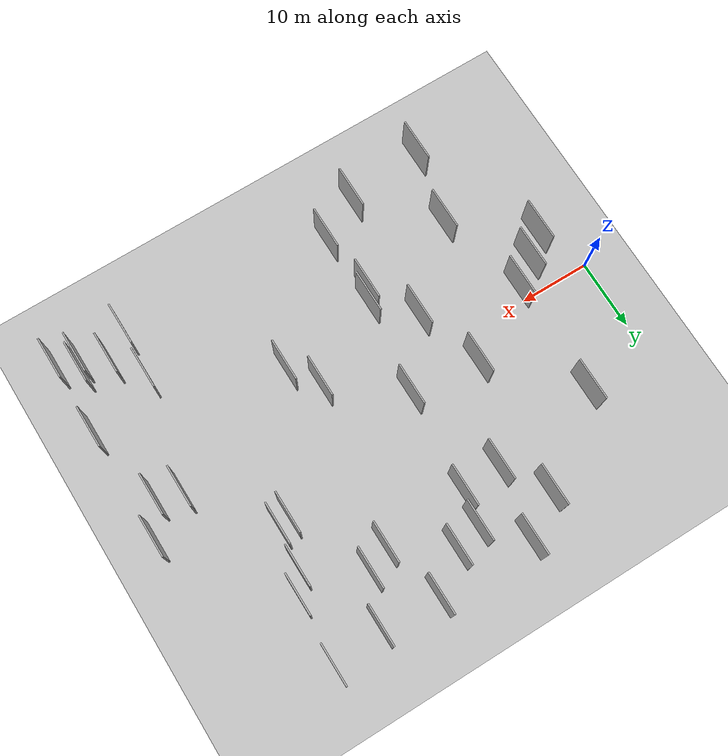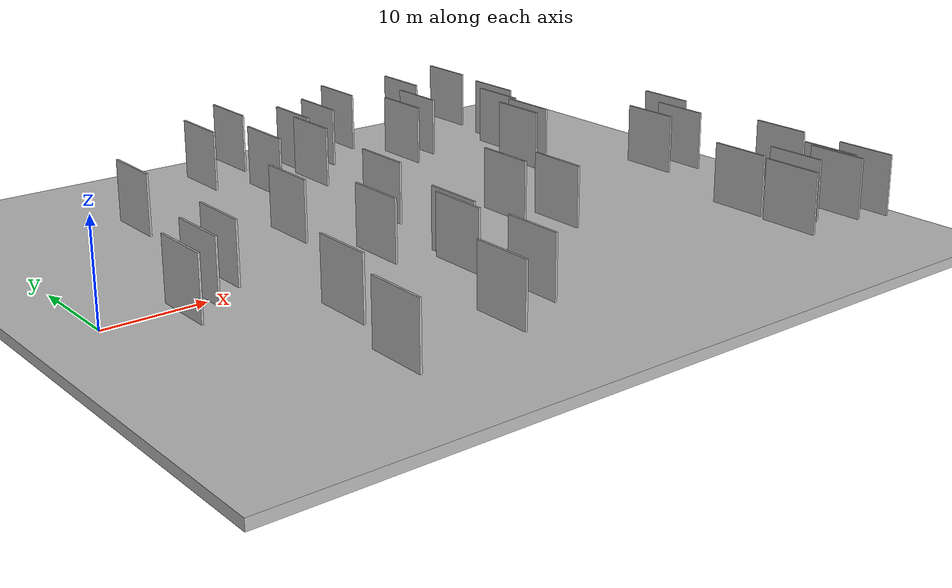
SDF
<?xml version="1.0" encoding="utf-8"?>

<sdf version="1.6">

   <world name="default">

      <gui fullscreen="0">

         <camera name="user_camera">

            <pose>-15 0 4.57585 0 0 0</pose>

            <view_controller>orbit</view_controller>

         </camera>

      </gui>

      <scene>

         <sky>

           <clouds>

             <speed>12</speed>

           </clouds>

         </sky>

         <ambient>0.4 0.4 0.4 1</ambient>

         <background>0.7 0.7 0.7 1</background>

         <shadows>1</shadows>

      </scene>

      <gravity>0 0 -9.8066</gravity>

      <magnetic_field>6e-06 2.3e-05 -4.2e-05</magnetic_field>

      <physics default="0" name="default_physics" type="ode">

         <ode>

            <solver>

               <type>quick</type>

               <iters>10</iters>

               <sor>1.0</sor>

               <use_dynamic_moi_rescaling>0</use_dynamic_moi_rescaling>

            </solver>

            <constraints>

               <cfm>0</cfm>

               <erp>0.2</erp>

               <contact_max_correcting_vel>100</contact_max_correcting_vel>

               <contact_surface_layer>0.001</contact_surface_layer>

            </constraints>

         </ode>

         <max_step_size>0.004</max_step_size>

         <real_time_factor>1</real_time_factor>

         <real_time_update_rate>250</real_time_update_rate>

      </physics>

      <light name="sun" type="directional">

         <cast_shadows>1</cast_shadows>

         <pose>0 0 10 0 0 0</pose>

         <diffuse>0.8 0.8 0.8 1</diffuse>

         <specular>0.2 0.2 0.2 1</specular>

         <attenuation>

            <range>1000</range>

            <constant>0.9</constant>

            <linear>0.01</linear>

            <quadratic>0.001</quadratic>

         </attenuation>

         <direction>-0.5 0.1 -0.9</direction>

      </light>

      <include>

         <name>ground_plane_1</name>

         <uri>model://HANNAS_ground_plane</uri>

         <pose>0 0 0  0 0 0</pose>

      </include>

      <include>

         <name>ground_plane_2</name>

         <uri>model://HANNAS_ground_plane</uri>

         <pose>100 0 0  0 0 0</pose>

      </include>

      <model name="HANNAS_wall_1">

         <static>1</static>

         <pose frame="">14.2026 -14.5574 2.5 0.000000 0.000000 1.570796</pose>

         <link name="link">

            <pose frame="">0 0 3.00 0 0 0</pose>

            <collision name="collision">

               <geometry>

                  <box>

                     <size>6.00 0.2 6.00</size>

                  </box>

               </geometry>

               <max_contacts>10</max_contacts>

               <surface>

                  <contact>

                     <ode/>

                  </contact>

                  <bounce/>

                  <friction>

                     <torsional>

                        <ode/>

                     </torsional>

                     <ode/>

                  </friction>

               </surface>

            </collision>

            <visual name="visual">

               <cast_shadows>0</cast_shadows>

               <geometry>

                  <box>

                     <size>6.00 0.2 6.00</size>

                  </box>

               </geometry>

               <material>

                  <script>

                     <uri>model://HANNAS_wall/materials/scripts</uri>

                     <uri>model://HANNAS_wall/materials/textures</uri>

                     <name>vrc/HANNAS_wall</name>

                  </script>

               </material>

            </visual>

            <self_collide>0</self_collide>

            <enable_wind>0</enable_wind>

            <kinematic>0</kinematic>

         </link>

      </model>

      <model name="HANNAS_wall_2">

         <static>1</static>

         <pose frame="">28.8171 -10.0424 2.5 0.000000 0.000000 1.570796</pose>

         <link name="link">

            <pose frame="">0 0 3.00 0 0 0</pose>

            <collision name="collision">

               <geometry>

                  <box>

                     <size>6.00 0.2 6.00</size>

                  </box>

               </geometry>

               <max_contacts>10</max_contacts>

               <surface>

                  <contact>

                     <ode/>

                  </contact>

                  <bounce/>

                  <friction>

                     <torsional>

                        <ode/>

                     </torsional>

                     <ode/>

                  </friction>

               </surface>

            </collision>

            <visual name="visual">

               <cast_shadows>0</cast_shadows>

               <geometry>

                  <box>

                     <size>6.00 0.2 6.00</size>

                  </box>

               </geometry>

               <material>

                  <script>

                     <uri>model://HANNAS_wall/materials/scripts</uri>

                     <uri>model://HANNAS_wall/materials/textures</uri>

                     <name>vrc/HANNAS_wall</name>

                  </script>

               </material>

            </visual>

            <self_collide>0</self_collide>

            <enable_wind>0</enable_wind>

            <kinematic>0</kinematic>

         </link>

      </model>

      <model name="HANNAS_wall_3">

         <static>1</static>

         <pose frame="">41.7081 27.2833 2.5 0.000000 0.000000 1.570796</pose>

         <link name="link">

            <pose frame="">0 0 3.00 0 0 0</pose>

            <collision name="collision">

               <geometry>

                  <box>

                     <size>6.00 0.2 6.00</size>

                  </box>

               </geometry>

               <max_contacts>10</max_contacts>

               <surface>

                  <contact>

                     <ode/>

                  </contact>

                  <bounce/>

                  <friction>

                     <torsional>

                        <ode/>

                     </torsional>

                     <ode/>

                  </friction>

               </surface>

            </collision>

            <visual name="visual">

               <cast_shadows>0</cast_shadows>

               <geometry>

                  <box>

                     <size>6.00 0.2 6.00</size>

                  </box>

               </geometry>

               <material>

                  <script>

                     <uri>model://HANNAS_wall/materials/scripts</uri>

                     <uri>model://HANNAS_wall/materials/textures</uri>

                     <name>vrc/HANNAS_wall</name>

                  </script>

               </material>

            </visual>

            <self_collide>0</self_collide>

            <enable_wind>0</enable_wind>

            <kinematic>0</kinematic>

         </link>

      </model>

      <model name="HANNAS_wall_4">

         <static>1</static>

         <pose frame="">20.9858 4.3722 2.5 0.000000 0.000000 1.570796</pose>

         <link name="link">

            <pose frame="">0 0 3.00 0 0 0</pose>

            <collision name="collision">

               <geometry>

                  <box>

                     <size>6.00 0.2 6.00</size>

                  </box>

               </geometry>

               <max_contacts>10</max_contacts>

               <surface>

                  <contact>

                     <ode/>

                  </contact>

                  <bounce/>

                  <friction>

                     <torsional>

                        <ode/>

                     </torsional>

                     <ode/>

                  </friction>

               </surface>

            </collision>

            <visual name="visual">

               <cast_shadows>0</cast_shadows>

               <geometry>

                  <box>

                     <size>6.00 0.2 6.00</size>

                  </box>

               </geometry>

               <material>

                  <script>

                     <uri>model://HANNAS_wall/materials/scripts</uri>

                     <uri>model://HANNAS_wall/materials/textures</uri>

                     <name>vrc/HANNAS_wall</name>

                  </script>

               </material>

            </visual>

            <self_collide>0</self_collide>

            <enable_wind>0</enable_wind>

            <kinematic>0</kinematic>

         </link>

      </model>

      <model name="HANNAS_wall_5">

         <static>1</static>

         <pose frame="">22.5727 23.4270 2.5 0.000000 0.000000 1.570796</pose>

         <link name="link">

            <pose frame="">0 0 3.00 0 0 0</pose>

            <collision name="collision">

               <geometry>

                  <box>

                     <size>6.00 0.2 6.00</size>

                  </box>

               </geometry>

               <max_contacts>10</max_contacts>

               <surface>

                  <contact>

                     <ode/>

                  </contact>

                  <bounce/>

                  <friction>

                     <torsional>

                        <ode/>

                     </torsional>

                     <ode/>

                  </friction>

               </surface>

            </collision>

            <visual name="visual">

               <cast_shadows>0</cast_shadows>

               <geometry>

                  <box>

                     <size>6.00 0.2 6.00</size>

                  </box>

               </geometry>

               <material>

                  <script>

                     <uri>model://HANNAS_wall/materials/scripts</uri>

                     <uri>model://HANNAS_wall/materials/textures</uri>

                     <name>vrc/HANNAS_wall</name>

                  </script>

               </material>

            </visual>

            <self_collide>0</self_collide>

            <enable_wind>0</enable_wind>

            <kinematic>0</kinematic>

         </link>

      </model>

      <model name="HANNAS_wall_6">

         <static>1</static>

         <pose frame="">10.6639 -1.4357 2.5 0.000000 0.000000 1.570796</pose>

         <link name="link">

            <pose frame="">0 0 3.00 0 0 0</pose>

            <collision name="collision">

               <geometry>

                  <box>

                     <size>6.00 0.2 6.00</size>

                  </box>

               </geometry>

               <max_contacts>10</max_contacts>

               <surface>

                  <contact>

                     <ode/>

                  </contact>

                  <bounce/>

                  <friction>

                     <torsional>

                        <ode/>

                     </torsional>

                     <ode/>

                  </friction>

               </surface>

            </collision>

            <visual name="visual">

               <cast_shadows>0</cast_shadows>

               <geometry>

                  <box>

                     <size>6.00 0.2 6.00</size>

                  </box>

               </geometry>

               <material>

                  <script>

                     <uri>model://HANNAS_wall/materials/scripts</uri>

                     <uri>model://HANNAS_wall/materials/textures</uri>

                     <name>vrc/HANNAS_wall</name>

                  </script>

               </material>

            </visual>

            <self_collide>0</self_collide>

            <enable_wind>0</enable_wind>

            <kinematic>0</kinematic>

         </link>

      </model>

      <model name="HANNAS_wall_7">

         <static>1</static>

         <pose frame="">56.5429 18.2465 2.5 0.000000 0.000000 1.570796</pose>

         <link name="link">

            <pose frame="">0 0 3.00 0 0 0</pose>

            <collision name="collision">

               <geometry>

                  <box>

                     <size>6.00 0.2 6.00</size>

                  </box>

               </geometry>

               <max_contacts>10</max_contacts>

               <surface>

                  <contact>

                     <ode/>

                  </contact>

                  <bounce/>

                  <friction>

                     <torsional>

                        <ode/>

                     </torsional>

                     <ode/>

                  </friction>

               </surface>

            </collision>

            <visual name="visual">

               <cast_shadows>0</cast_shadows>

               <geometry>

                  <box>

                     <size>6.00 0.2 6.00</size>

                  </box>

               </geometry>

               <material>

                  <script>

                     <uri>model://HANNAS_wall/materials/scripts</uri>

                     <uri>model://HANNAS_wall/materials/textures</uri>

                     <name>vrc/HANNAS_wall</name>

                  </script>

               </material>

            </visual>

            <self_collide>0</self_collide>

            <enable_wind>0</enable_wind>

            <kinematic>0</kinematic>

         </link>

      </model>

      <model name="HANNAS_wall_8">

         <static>1</static>

         <pose frame="">28.0515 -11.6703 2.5 0.000000 0.000000 1.570796</pose>

         <link name="link">

            <pose frame="">0 0 3.00 0 0 0</pose>

            <collision name="collision">

               <geometry>

                  <box>

                     <size>6.00 0.2 6.00</size>

                  </box>

               </geometry>

               <max_contacts>10</max_contacts>

               <surface>

                  <contact>

                     <ode/>

                  </contact>

                  <bounce/>

                  <friction>

                     <torsional>

                        <ode/>

                     </torsional>

                     <ode/>

                  </friction>

               </surface>

            </collision>

            <visual name="visual">

               <cast_shadows>0</cast_shadows>

               <geometry>

                  <box>

                     <size>6.00 0.2 6.00</size>

                  </box>

               </geometry>

               <material>

                  <script>

                     <uri>model://HANNAS_wall/materials/scripts</uri>

                     <uri>model://HANNAS_wall/materials/textures</uri>

                     <name>vrc/HANNAS_wall</name>

                  </script>

               </material>

            </visual>

            <self_collide>0</self_collide>

            <enable_wind>0</enable_wind>

            <kinematic>0</kinematic>

         </link>

      </model>

      <model name="HANNAS_wall_9">

         <static>1</static>

         <pose frame="">28.0957 27.2569 2.5 0.000000 0.000000 1.570796</pose>

         <link name="link">

            <pose frame="">0 0 3.00 0 0 0</pose>

            <collision name="collision">

               <geometry>

                  <box>

                     <size>6.00 0.2 6.00</size>

                  </box>

               </geometry>

               <max_contacts>10</max_contacts>

               <surface>

                  <contact>

                     <ode/>

                  </contact>

                  <bounce/>

                  <friction>

                     <torsional>

                        <ode/>

                     </torsional>

                     <ode/>

                  </friction>

               </surface>

            </collision>

            <visual name="visual">

               <cast_shadows>0</cast_shadows>

               <geometry>

                  <box>

                     <size>6.00 0.2 6.00</size>

                  </box>

               </geometry>

               <material>

                  <script>

                     <uri>model://HANNAS_wall/materials/scripts</uri>

                     <uri>model://HANNAS_wall/materials/textures</uri>

                     <name>vrc/HANNAS_wall</name>

                  </script>

               </material>

            </visual>

            <self_collide>0</self_collide>

            <enable_wind>0</enable_wind>

            <kinematic>0</kinematic>

         </link>

      </model>

      <model name="HANNAS_wall_10">

         <static>1</static>

         <pose frame="">32.0313 17.6643 2.5 0.000000 0.000000 1.570796</pose>

         <link name="link">

            <pose frame="">0 0 3.00 0 0 0</pose>

            <collision name="collision">

               <geometry>

                  <box>

                     <size>6.00 0.2 6.00</size>

                  </box>

               </geometry>

               <max_contacts>10</max_contacts>

               <surface>

                  <contact>

                     <ode/>

                  </contact>

                  <bounce/>

                  <friction>

                     <torsional>

                        <ode/>

                     </torsional>

                     <ode/>

                  </friction>

               </surface>

            </collision>

            <visual name="visual">

               <cast_shadows>0</cast_shadows>

               <geometry>

                  <box>

                     <size>6.00 0.2 6.00</size>

                  </box>

               </geometry>

               <material>

                  <script>

                     <uri>model://HANNAS_wall/materials/scripts</uri>

                     <uri>model://HANNAS_wall/materials/textures</uri>

                     <name>vrc/HANNAS_wall</name>

                  </script>

               </material>

            </visual>

            <self_collide>0</self_collide>

            <enable_wind>0</enable_wind>

            <kinematic>0</kinematic>

         </link>

      </model>

      <model name="HANNAS_wall_11">

         <static>1</static>

         <pose frame="">7.3054 -4.0457 2.5 0.000000 0.000000 1.570796</pose>

         <link name="link">

            <pose frame="">0 0 3.00 0 0 0</pose>

            <collision name="collision">

               <geometry>

                  <box>

                     <size>6.00 0.2 6.00</size>

                  </box>

               </geometry>

               <max_contacts>10</max_contacts>

               <surface>

                  <contact>

                     <ode/>

                  </contact>

                  <bounce/>

                  <friction>

                     <torsional>

                        <ode/>

                     </torsional>

                     <ode/>

                  </friction>

               </surface>

            </collision>

            <visual name="visual">

               <cast_shadows>0</cast_shadows>

               <geometry>

                  <box>

                     <size>6.00 0.2 6.00</size>

                  </box>

               </geometry>

               <material>

                  <script>

                     <uri>model://HANNAS_wall/materials/scripts</uri>

                     <uri>model://HANNAS_wall/materials/textures</uri>

                     <name>vrc/HANNAS_wall</name>

                  </script>

               </material>

            </visual>

            <self_collide>0</self_collide>

            <enable_wind>0</enable_wind>

            <kinematic>0</kinematic>

         </link>

      </model>

      <model name="HANNAS_wall_12">

         <static>1</static>

         <pose frame="">4.3363 -6.6348 2.5 0.000000 0.000000 1.570796</pose>

         <link name="link">

            <pose frame="">0 0 3.00 0 0 0</pose>

            <collision name="collision">

               <geometry>

                  <box>

                     <size>6.00 0.2 6.00</size>

                  </box>

               </geometry>

               <max_contacts>10</max_contacts>

               <surface>

                  <contact>

                     <ode/>

                  </contact>

                  <bounce/>

                  <friction>

                     <torsional>

                        <ode/>

                     </torsional>

                     <ode/>

                  </friction>

               </surface>

            </collision>

            <visual name="visual">

               <cast_shadows>0</cast_shadows>

               <geometry>

                  <box>

                     <size>6.00 0.2 6.00</size>

                  </box>

               </geometry>

               <material>

                  <script>

                     <uri>model://HANNAS_wall/materials/scripts</uri>

                     <uri>model://HANNAS_wall/materials/textures</uri>

                     <name>vrc/HANNAS_wall</name>

                  </script>

               </material>

            </visual>

            <self_collide>0</self_collide>

            <enable_wind>0</enable_wind>

            <kinematic>0</kinematic>

         </link>

      </model>

      <model name="HANNAS_wall_13">

         <static>1</static>

         <pose frame="">30.7363 3.3498 2.5 0.000000 0.000000 1.570796</pose>

         <link name="link">

            <pose frame="">0 0 3.00 0 0 0</pose>

            <collision name="collision">

               <geometry>

                  <box>

                     <size>6.00 0.2 6.00</size>

                  </box>

               </geometry>

               <max_contacts>10</max_contacts>

               <surface>

                  <contact>

                     <ode/>

                  </contact>

                  <bounce/>

                  <friction>

                     <torsional>

                        <ode/>

                     </torsional>

                     <ode/>

                  </friction>

               </surface>

            </collision>

            <visual name="visual">

               <cast_shadows>0</cast_shadows>

               <geometry>

                  <box>

                     <size>6.00 0.2 6.00</size>

                  </box>

               </geometry>

               <material>

                  <script>

                     <uri>model://HANNAS_wall/materials/scripts</uri>

                     <uri>model://HANNAS_wall/materials/textures</uri>

                     <name>vrc/HANNAS_wall</name>

                  </script>

               </material>

            </visual>

            <self_collide>0</self_collide>

            <enable_wind>0</enable_wind>

            <kinematic>0</kinematic>

         </link>

      </model>

      <model name="HANNAS_wall_14">

         <static>1</static>

         <pose frame="">62.1894 -0.7530 2.5 0.000000 0.000000 1.570796</pose>

         <link name="link">

            <pose frame="">0 0 3.00 0 0 0</pose>

            <collision name="collision">

               <geometry>

                  <box>

                     <size>6.00 0.2 6.00</size>

                  </box>

               </geometry>

               <max_contacts>10</max_contacts>

               <surface>

                  <contact>

                     <ode/>

                  </contact>

                  <bounce/>

                  <friction>

                     <torsional>

                        <ode/>

                     </torsional>

                     <ode/>

                  </friction>

               </surface>

            </collision>

            <visual name="visual">

               <cast_shadows>0</cast_shadows>

               <geometry>

                  <box>

                     <size>6.00 0.2 6.00</size>

                  </box>

               </geometry>

               <material>

                  <script>

                     <uri>model://HANNAS_wall/materials/scripts</uri>

                     <uri>model://HANNAS_wall/materials/textures</uri>

                     <name>vrc/HANNAS_wall</name>

                  </script>

               </material>

            </visual>

            <self_collide>0</self_collide>

            <enable_wind>0</enable_wind>

            <kinematic>0</kinematic>

         </link>

      </model>

      <model name="HANNAS_wall_15">

         <static>1</static>

         <pose frame="">54.1920 9.5668 2.5 0.000000 0.000000 1.570796</pose>

         <link name="link">

            <pose frame="">0 0 3.00 0 0 0</pose>

            <collision name="collision">

               <geometry>

                  <box>

                     <size>6.00 0.2 6.00</size>

                  </box>

               </geometry>

               <max_contacts>10</max_contacts>

               <surface>

                  <contact>

                     <ode/>

                  </contact>

                  <bounce/>

                  <friction>

                     <torsional>

                        <ode/>

                     </torsional>

                     <ode/>

                  </friction>

               </surface>

            </collision>

            <visual name="visual">

               <cast_shadows>0</cast_shadows>

               <geometry>

                  <box>

                     <size>6.00 0.2 6.00</size>

                  </box>

               </geometry>

               <material>

                  <script>

                     <uri>model://HANNAS_wall/materials/scripts</uri>

                     <uri>model://HANNAS_wall/materials/textures</uri>

                     <name>vrc/HANNAS_wall</name>

                  </script>

               </material>

            </visual>

            <self_collide>0</self_collide>

            <enable_wind>0</enable_wind>

            <kinematic>0</kinematic>

         </link>

      </model>

      <model name="HANNAS_wall_16">

         <static>1</static>

         <pose frame="">57.1819 27.5732 2.5 0.000000 0.000000 1.570796</pose>

         <link name="link">

            <pose frame="">0 0 3.00 0 0 0</pose>

            <collision name="collision">

               <geometry>

                  <box>

                     <size>6.00 0.2 6.00</size>

                  </box>

               </geometry>

               <max_contacts>10</max_contacts>

               <surface>

                  <contact>

                     <ode/>

                  </contact>

                  <bounce/>

                  <friction>

                     <torsional>

                        <ode/>

                     </torsional>

                     <ode/>

                  </friction>

               </surface>

            </collision>

            <visual name="visual">

               <cast_shadows>0</cast_shadows>

               <geometry>

                  <box>

                     <size>6.00 0.2 6.00</size>

                  </box>

               </geometry>

               <material>

                  <script>

                     <uri>model://HANNAS_wall/materials/scripts</uri>

                     <uri>model://HANNAS_wall/materials/textures</uri>

                     <name>vrc/HANNAS_wall</name>

                  </script>

               </material>

            </visual>

            <self_collide>0</self_collide>

            <enable_wind>0</enable_wind>

            <kinematic>0</kinematic>

         </link>

      </model>

      <model name="HANNAS_wall_17">

         <static>1</static>

         <pose frame="">58.5839 -16.3886 2.5 0.000000 0.000000 1.570796</pose>

         <link name="link">

            <pose frame="">0 0 3.00 0 0 0</pose>

            <collision name="collision">

               <geometry>

                  <box>

                     <size>6.00 0.2 6.00</size>

                  </box>

               </geometry>

               <max_contacts>10</max_contacts>

               <surface>

                  <contact>

                     <ode/>

                  </contact>

                  <bounce/>

                  <friction>

                     <torsional>

                        <ode/>

                     </torsional>

                     <ode/>

                  </friction>

               </surface>

            </collision>

            <visual name="visual">

               <cast_shadows>0</cast_shadows>

               <geometry>

                  <box>

                     <size>6.00 0.2 6.00</size>

                  </box>

               </geometry>

               <material>

                  <script>

                     <uri>model://HANNAS_wall/materials/scripts</uri>

                     <uri>model://HANNAS_wall/materials/textures</uri>

                     <name>vrc/HANNAS_wall</name>

                  </script>

               </material>

            </visual>

            <self_collide>0</self_collide>

            <enable_wind>0</enable_wind>

            <kinematic>0</kinematic>

         </link>

      </model>

      <model name="HANNAS_wall_18">

         <static>1</static>

         <pose frame="">61.6391 -20.5775 2.5 0.000000 0.000000 1.570796</pose>

         <link name="link">

            <pose frame="">0 0 3.00 0 0 0</pose>

            <collision name="collision">

               <geometry>

                  <box>

                     <size>6.00 0.2 6.00</size>

                  </box>

               </geometry>

               <max_contacts>10</max_contacts>

               <surface>

                  <contact>

                     <ode/>

                  </contact>

                  <bounce/>

                  <friction>

                     <torsional>

                        <ode/>

                     </torsional>

                     <ode/>

                  </friction>

               </surface>

            </collision>

            <visual name="visual">

               <cast_shadows>0</cast_shadows>

               <geometry>

                  <box>

                     <size>6.00 0.2 6.00</size>

                  </box>

               </geometry>

               <material>

                  <script>

                     <uri>model://HANNAS_wall/materials/scripts</uri>

                     <uri>model://HANNAS_wall/materials/textures</uri>

                     <name>vrc/HANNAS_wall</name>

                  </script>

               </material>

            </visual>

            <self_collide>0</self_collide>

            <enable_wind>0</enable_wind>

            <kinematic>0</kinematic>

         </link>

      </model>

      <model name="HANNAS_wall_19">

         <static>1</static>

         <pose frame="">28.9326 -20.4103 2.5 0.000000 0.000000 1.570796</pose>

         <link name="link">

            <pose frame="">0 0 3.00 0 0 0</pose>

            <collision name="collision">

               <geometry>

                  <box>

                     <size>6.00 0.2 6.00</size>

                  </box>

               </geometry>

               <max_contacts>10</max_contacts>

               <surface>

                  <contact>

                     <ode/>

                  </contact>

                  <bounce/>

                  <friction>

                     <torsional>

                        <ode/>

                     </torsional>

                     <ode/>

                  </friction>

               </surface>

            </collision>

            <visual name="visual">

               <cast_shadows>0</cast_shadows>

               <geometry>

                  <box>

                     <size>6.00 0.2 6.00</size>

                  </box>

               </geometry>

               <material>

                  <script>

                     <uri>model://HANNAS_wall/materials/scripts</uri>

                     <uri>model://HANNAS_wall/materials/textures</uri>

                     <name>vrc/HANNAS_wall</name>

                  </script>

               </material>

            </visual>

            <self_collide>0</self_collide>

            <enable_wind>0</enable_wind>

            <kinematic>0</kinematic>

         </link>

      </model>

      <model name="HANNAS_wall_20">

         <static>1</static>

         <pose frame="">68.0917 -23.6940 2.5 0.000000 0.000000 1.570796</pose>

         <link name="link">

            <pose frame="">0 0 3.00 0 0 0</pose>

            <collision name="collision">

               <geometry>

                  <box>

                     <size>6.00 0.2 6.00</size>

                  </box>

               </geometry>

               <max_contacts>10</max_contacts>

               <surface>

                  <contact>

                     <ode/>

                  </contact>

                  <bounce/>

                  <friction>

                     <torsional>

                        <ode/>

                     </torsional>

                     <ode/>

                  </friction>

               </surface>

            </collision>

            <visual name="visual">

               <cast_shadows>0</cast_shadows>

               <geometry>

                  <box>

                     <size>6.00 0.2 6.00</size>

                  </box>

               </geometry>

               <material>

                  <script>

                     <uri>model://HANNAS_wall/materials/scripts</uri>

                     <uri>model://HANNAS_wall/materials/textures</uri>

                     <name>vrc/HANNAS_wall</name>

                  </script>

               </material>

            </visual>

            <self_collide>0</self_collide>

            <enable_wind>0</enable_wind>

            <kinematic>0</kinematic>

         </link>

      </model>

      <model name="HANNAS_wall_21">

         <static>1</static>

         <pose frame="">54.7699 15.2630 2.5 0.000000 0.000000 1.570796</pose>

         <link name="link">

            <pose frame="">0 0 3.00 0 0 0</pose>

            <collision name="collision">

               <geometry>

                  <box>

                     <size>6.00 0.2 6.00</size>

                  </box>

               </geometry>

               <max_contacts>10</max_contacts>

               <surface>

                  <contact>

                     <ode/>

                  </contact>

                  <bounce/>

                  <friction>

                     <torsional>

                        <ode/>

                     </torsional>

                     <ode/>

                  </friction>

               </surface>

            </collision>

            <visual name="visual">

               <cast_shadows>0</cast_shadows>

               <geometry>

                  <box>

                     <size>6.00 0.2 6.00</size>

                  </box>

               </geometry>

               <material>

                  <script>

                     <uri>model://HANNAS_wall/materials/scripts</uri>

                     <uri>model://HANNAS_wall/materials/textures</uri>

                     <name>vrc/HANNAS_wall</name>

                  </script>

               </material>

            </visual>

            <self_collide>0</self_collide>

            <enable_wind>0</enable_wind>

            <kinematic>0</kinematic>

         </link>

      </model>

      <model name="HANNAS_wall_22">

         <static>1</static>

         <pose frame="">24.1103 -5.1033 2.5 0.000000 0.000000 1.570796</pose>

         <link name="link">

            <pose frame="">0 0 3.00 0 0 0</pose>

            <collision name="collision">

               <geometry>

                  <box>

                     <size>6.00 0.2 6.00</size>

                  </box>

               </geometry>

               <max_contacts>10</max_contacts>

               <surface>

                  <contact>

                     <ode/>

                  </contact>

                  <bounce/>

                  <friction>

                     <torsional>

                        <ode/>

                     </torsional>

                     <ode/>

                  </friction>

               </surface>

            </collision>

            <visual name="visual">

               <cast_shadows>0</cast_shadows>

               <geometry>

                  <box>

                     <size>6.00 0.2 6.00</size>

                  </box>

               </geometry>

               <material>

                  <script>

                     <uri>model://HANNAS_wall/materials/scripts</uri>

                     <uri>model://HANNAS_wall/materials/textures</uri>

                     <name>vrc/HANNAS_wall</name>

                  </script>

               </material>

            </visual>

            <self_collide>0</self_collide>

            <enable_wind>0</enable_wind>

            <kinematic>0</kinematic>

         </link>

      </model>

      <model name="HANNAS_wall_23">

         <static>1</static>

         <pose frame="">40.0230 -3.6416 2.5 0.000000 0.000000 1.570796</pose>

         <link name="link">

            <pose frame="">0 0 3.00 0 0 0</pose>

            <collision name="collision">

               <geometry>

                  <box>

                     <size>6.00 0.2 6.00</size>

                  </box>

               </geometry>

               <max_contacts>10</max_contacts>

               <surface>

                  <contact>

                     <ode/>

                  </contact>

                  <bounce/>

                  <friction>

                     <torsional>

                        <ode/>

                     </torsional>

                     <ode/>

                  </friction>

               </surface>

            </collision>

            <visual name="visual">

               <cast_shadows>0</cast_shadows>

               <geometry>

                  <box>

                     <size>6.00 0.2 6.00</size>

                  </box>

               </geometry>

               <material>

                  <script>

                     <uri>model://HANNAS_wall/materials/scripts</uri>

                     <uri>model://HANNAS_wall/materials/textures</uri>

                     <name>vrc/HANNAS_wall</name>

                  </script>

               </material>

            </visual>

            <self_collide>0</self_collide>

            <enable_wind>0</enable_wind>

            <kinematic>0</kinematic>

         </link>

      </model>

      <model name="HANNAS_wall_24">

         <static>1</static>

         <pose frame="">10.9009 14.8234 2.5 0.000000 0.000000 1.570796</pose>

         <link name="link">

            <pose frame="">0 0 3.00 0 0 0</pose>

            <collision name="collision">

               <geometry>

                  <box>

                     <size>6.00 0.2 6.00</size>

                  </box>

               </geometry>

               <max_contacts>10</max_contacts>

               <surface>

                  <contact>

                     <ode/>

                  </contact>

                  <bounce/>

                  <friction>

                     <torsional>

                        <ode/>

                     </torsional>

                     <ode/>

                  </friction>

               </surface>

            </collision>

            <visual name="visual">

               <cast_shadows>0</cast_shadows>

               <geometry>

                  <box>

                     <size>6.00 0.2 6.00</size>

                  </box>

               </geometry>

               <material>

                  <script>

                     <uri>model://HANNAS_wall/materials/scripts</uri>

                     <uri>model://HANNAS_wall/materials/textures</uri>

                     <name>vrc/HANNAS_wall</name>

                  </script>

               </material>

            </visual>

            <self_collide>0</self_collide>

            <enable_wind>0</enable_wind>

            <kinematic>0</kinematic>

         </link>

      </model>

      <model name="HANNAS_wall_25">

         <static>1</static>

         <pose frame="">47.3428 20.1316 2.5 0.000000 0.000000 1.570796</pose>

         <link name="link">

            <pose frame="">0 0 3.00 0 0 0</pose>

            <collision name="collision">

               <geometry>

                  <box>

                     <size>6.00 0.2 6.00</size>

                  </box>

               </geometry>

               <max_contacts>10</max_contacts>

               <surface>

                  <contact>

                     <ode/>

                  </contact>

                  <bounce/>

                  <friction>

                     <torsional>

                        <ode/>

                     </torsional>

                     <ode/>

                  </friction>

               </surface>

            </collision>

            <visual name="visual">

               <cast_shadows>0</cast_shadows>

               <geometry>

                  <box>

                     <size>6.00 0.2 6.00</size>

                  </box>

               </geometry>

               <material>

                  <script>

                     <uri>model://HANNAS_wall/materials/scripts</uri>

                     <uri>model://HANNAS_wall/materials/textures</uri>

                     <name>vrc/HANNAS_wall</name>

                  </script>

               </material>

            </visual>

            <self_collide>0</self_collide>

            <enable_wind>0</enable_wind>

            <kinematic>0</kinematic>

         </link>

      </model>

      <model name="HANNAS_wall_26">

         <static>1</static>

         <pose frame="">65.6092 -1.6894 2.5 0.000000 0.000000 1.570796</pose>

         <link name="link">

            <pose frame="">0 0 3.00 0 0 0</pose>

            <collision name="collision">

               <geometry>

                  <box>

                     <size>6.00 0.2 6.00</size>

                  </box>

               </geometry>

               <max_contacts>10</max_contacts>

               <surface>

                  <contact>

                     <ode/>

                  </contact>

                  <bounce/>

                  <friction>

                     <torsional>

                        <ode/>

                     </torsional>

                     <ode/>

                  </friction>

               </surface>

            </collision>

            <visual name="visual">

               <cast_shadows>0</cast_shadows>

               <geometry>

                  <box>

                     <size>6.00 0.2 6.00</size>

                  </box>

               </geometry>

               <material>

                  <script>

                     <uri>model://HANNAS_wall/materials/scripts</uri>

                     <uri>model://HANNAS_wall/materials/textures</uri>

                     <name>vrc/HANNAS_wall</name>

                  </script>

               </material>

            </visual>

            <self_collide>0</self_collide>

            <enable_wind>0</enable_wind>

            <kinematic>0</kinematic>

         </link>

      </model>

      <model name="HANNAS_wall_27">

         <static>1</static>

         <pose frame="">58.2008 -22.9971 2.5 0.000000 0.000000 1.570796</pose>

         <link name="link">

            <pose frame="">0 0 3.00 0 0 0</pose>

            <collision name="collision">

               <geometry>

                  <box>

                     <size>6.00 0.2 6.00</size>

                  </box>

               </geometry>

               <max_contacts>10</max_contacts>

               <surface>

                  <contact>

                     <ode/>

                  </contact>

                  <bounce/>

                  <friction>

                     <torsional>

                        <ode/>

                     </torsional>

                     <ode/>

                  </friction>

               </surface>

            </collision>

            <visual name="visual">

               <cast_shadows>0</cast_shadows>

               <geometry>

                  <box>

                     <size>6.00 0.2 6.00</size>

                  </box>

               </geometry>

               <material>

                  <script>

                     <uri>model://HANNAS_wall/materials/scripts</uri>

                     <uri>model://HANNAS_wall/materials/textures</uri>

                     <name>vrc/HANNAS_wall</name>

                  </script>

               </material>

            </visual>

            <self_collide>0</self_collide>

            <enable_wind>0</enable_wind>

            <kinematic>0</kinematic>

         </link>

      </model>

      <model name="HANNAS_wall_28">

         <static>1</static>

         <pose frame="">23.0753 -23.5647 2.5 0.000000 0.000000 1.570796</pose>

         <link name="link">

            <pose frame="">0 0 3.00 0 0 0</pose>

            <collision name="collision">

               <geometry>

                  <box>

                     <size>6.00 0.2 6.00</size>

                  </box>

               </geometry>

               <max_contacts>10</max_contacts>

               <surface>

                  <contact>

                     <ode/>

                  </contact>

                  <bounce/>

                  <friction>

                     <torsional>

                        <ode/>

                     </torsional>

                     <ode/>

                  </friction>

               </surface>

            </collision>

            <visual name="visual">

               <cast_shadows>0</cast_shadows>

               <geometry>

                  <box>

                     <size>6.00 0.2 6.00</size>

                  </box>

               </geometry>

               <material>

                  <script>

                     <uri>model://HANNAS_wall/materials/scripts</uri>

                     <uri>model://HANNAS_wall/materials/textures</uri>

                     <name>vrc/HANNAS_wall</name>

                  </script>

               </material>

            </visual>

            <self_collide>0</self_collide>

            <enable_wind>0</enable_wind>

            <kinematic>0</kinematic>

         </link>

      </model>

      <model name="HANNAS_wall_29">

         <static>1</static>

         <pose frame="">26.3940 17.3170 2.5 0.000000 0.000000 1.570796</pose>

         <link name="link">

            <pose frame="">0 0 3.00 0 0 0</pose>

            <collision name="collision">

               <geometry>

                  <box>

                     <size>6.00 0.2 6.00</size>

                  </box>

               </geometry>

               <max_contacts>10</max_contacts>

               <surface>

                  <contact>

                     <ode/>

                  </contact>

                  <bounce/>

                  <friction>

                     <torsional>

                        <ode/>

                     </torsional>

                     <ode/>

                  </friction>

               </surface>

            </collision>

            <visual name="visual">

               <cast_shadows>0</cast_shadows>

               <geometry>

                  <box>

                     <size>6.00 0.2 6.00</size>

                  </box>

               </geometry>

               <material>

                  <script>

                     <uri>model://HANNAS_wall/materials/scripts</uri>

                     <uri>model://HANNAS_wall/materials/textures</uri>

                     <name>vrc/HANNAS_wall</name>

                  </script>

               </material>

            </visual>

            <self_collide>0</self_collide>

            <enable_wind>0</enable_wind>

            <kinematic>0</kinematic>

         </link>

      </model>

      <model name="HANNAS_wall_30">

         <static>1</static>

         <pose frame="">49.9162 26.6283 2.5 0.000000 0.000000 1.570796</pose>

         <link name="link">

            <pose frame="">0 0 3.00 0 0 0</pose>

            <collision name="collision">

               <geometry>

                  <box>

                     <size>6.00 0.2 6.00</size>

                  </box>

               </geometry>

               <max_contacts>10</max_contacts>

               <surface>

                  <contact>

                     <ode/>

                  </contact>

                  <bounce/>

                  <friction>

                     <torsional>

                        <ode/>

                     </torsional>

                     <ode/>

                  </friction>

               </surface>

            </collision>

            <visual name="visual">

               <cast_shadows>0</cast_shadows>

               <geometry>

                  <box>

                     <size>6.00 0.2 6.00</size>

                  </box>

               </geometry>

               <material>

                  <script>

                     <uri>model://HANNAS_wall/materials/scripts</uri>

                     <uri>model://HANNAS_wall/materials/textures</uri>

                     <name>vrc/HANNAS_wall</name>

                  </script>

               </material>

            </visual>

            <self_collide>0</self_collide>

            <enable_wind>0</enable_wind>

            <kinematic>0</kinematic>

         </link>

      </model>

      <model name="HANNAS_wall_31">

         <static>1</static>

         <pose frame="">65.0193 -22.7398 2.5 0.000000 0.000000 1.570796</pose>

         <link name="link">

            <pose frame="">0 0 3.00 0 0 0</pose>

            <collision name="collision">

               <geometry>

                  <box>

                     <size>6.00 0.2 6.00</size>

                  </box>

               </geometry>

               <max_contacts>10</max_contacts>

               <surface>

                  <contact>

                     <ode/>

                  </contact>

                  <bounce/>

                  <friction>

                     <torsional>

                        <ode/>

                     </torsional>

                     <ode/>

                  </friction>

               </surface>

            </collision>

            <visual name="visual">

               <cast_shadows>0</cast_shadows>

               <geometry>

                  <box>

                     <size>6.00 0.2 6.00</size>

                  </box>

               </geometry>

               <material>

                  <script>

                     <uri>model://HANNAS_wall/materials/scripts</uri>

                     <uri>model://HANNAS_wall/materials/textures</uri>

                     <name>vrc/HANNAS_wall</name>

                  </script>

               </material>

            </visual>

            <self_collide>0</self_collide>

            <enable_wind>0</enable_wind>

            <kinematic>0</kinematic>

         </link>

      </model>

      <model name="HANNAS_wall_32">

         <static>1</static>

         <pose frame="">12.0579 -24.7450 2.5 0.000000 0.000000 1.570796</pose>

         <link name="link">

            <pose frame="">0 0 3.00 0 0 0</pose>

            <collision name="collision">

               <geometry>

                  <box>

                     <size>6.00 0.2 6.00</size>

                  </box>

               </geometry>

               <max_contacts>10</max_contacts>

               <surface>

                  <contact>

                     <ode/>

                  </contact>

                  <bounce/>

                  <friction>

                     <torsional>

                        <ode/>

                     </torsional>

                     <ode/>

                  </friction>

               </surface>

            </collision>

            <visual name="visual">

               <cast_shadows>0</cast_shadows>

               <geometry>

                  <box>

                     <size>6.00 0.2 6.00</size>

                  </box>

               </geometry>

               <material>

                  <script>

                     <uri>model://HANNAS_wall/materials/scripts</uri>

                     <uri>model://HANNAS_wall/materials/textures</uri>

                     <name>vrc/HANNAS_wall</name>

                  </script>

               </material>

            </visual>

            <self_collide>0</self_collide>

            <enable_wind>0</enable_wind>

            <kinematic>0</kinematic>

         </link>

      </model>

      <model name="HANNAS_wall_33">

         <static>1</static>

         <pose frame="">44.0949 18.4941 2.5 0.000000 0.000000 1.570796</pose>

         <link name="link">

            <pose frame="">0 0 3.00 0 0 0</pose>

            <collision name="collision">

               <geometry>

                  <box>

                     <size>6.00 0.2 6.00</size>

                  </box>

               </geometry>

               <max_contacts>10</max_contacts>

               <surface>

                  <contact>

                     <ode/>

                  </contact>

                  <bounce/>

                  <friction>

                     <torsional>

                        <ode/>

                     </torsional>

                     <ode/>

                  </friction>

               </surface>

            </collision>

            <visual name="visual">

               <cast_shadows>0</cast_shadows>

               <geometry>

                  <box>

                     <size>6.00 0.2 6.00</size>

                  </box>

               </geometry>

               <material>

                  <script>

                     <uri>model://HANNAS_wall/materials/scripts</uri>

                     <uri>model://HANNAS_wall/materials/textures</uri>

                     <name>vrc/HANNAS_wall</name>

                  </script>

               </material>

            </visual>

            <self_collide>0</self_collide>

            <enable_wind>0</enable_wind>

            <kinematic>0</kinematic>

         </link>

      </model>

      <model name="HANNAS_wall_34">

         <static>1</static>

         <pose frame="">42.8234 -7.8627 2.5 0.000000 0.000000 1.570796</pose>

         <link name="link">

            <pose frame="">0 0 3.00 0 0 0</pose>

            <collision name="collision">

               <geometry>

                  <box>

                     <size>6.00 0.2 6.00</size>

                  </box>

               </geometry>

               <max_contacts>10</max_contacts>

               <surface>

                  <contact>

                     <ode/>

                  </contact>

                  <bounce/>

                  <friction>

                     <torsional>

                        <ode/>

                     </torsional>

                     <ode/>

                  </friction>

               </surface>

            </collision>

            <visual name="visual">

               <cast_shadows>0</cast_shadows>

               <geometry>

                  <box>

                     <size>6.00 0.2 6.00</size>

                  </box>

               </geometry>

               <material>

                  <script>

                     <uri>model://HANNAS_wall/materials/scripts</uri>

                     <uri>model://HANNAS_wall/materials/textures</uri>

                     <name>vrc/HANNAS_wall</name>

                  </script>

               </material>

            </visual>

            <self_collide>0</self_collide>

            <enable_wind>0</enable_wind>

            <kinematic>0</kinematic>

         </link>

      </model>

      <model name="HANNAS_wall_35">

         <static>1</static>

         <pose frame="">68.1398 -13.2705 2.5 0.000000 0.000000 1.570796</pose>

         <link name="link">

            <pose frame="">0 0 3.00 0 0 0</pose>

            <collision name="collision">

               <geometry>

                  <box>

                     <size>6.00 0.2 6.00</size>

                  </box>

               </geometry>

               <max_contacts>10</max_contacts>

               <surface>

                  <contact>

                     <ode/>

                  </contact>

                  <bounce/>

                  <friction>

                     <torsional>

                        <ode/>

                     </torsional>

                     <ode/>

                  </friction>

               </surface>

            </collision>

            <visual name="visual">

               <cast_shadows>0</cast_shadows>

               <geometry>

                  <box>

                     <size>6.00 0.2 6.00</size>

                  </box>

               </geometry>

               <material>

                  <script>

                     <uri>model://HANNAS_wall/materials/scripts</uri>

                     <uri>model://HANNAS_wall/materials/textures</uri>

                     <name>vrc/HANNAS_wall</name>

                  </script>

               </material>

            </visual>

            <self_collide>0</self_collide>

            <enable_wind>0</enable_wind>

            <kinematic>0</kinematic>

         </link>

      </model>

      <model name="HANNAS_wall_36">

         <static>1</static>

         <pose frame="">68.1692 2.8344 2.5 0.000000 0.000000 1.570796</pose>

         <link name="link">

            <pose frame="">0 0 3.00 0 0 0</pose>

            <collision name="collision">

               <geometry>

                  <box>

                     <size>6.00 0.2 6.00</size>

                  </box>

               </geometry>

               <max_contacts>10</max_contacts>

               <surface>

                  <contact>

                     <ode/>

                  </contact>

                  <bounce/>

                  <friction>

                     <torsional>

                        <ode/>

                     </torsional>

                     <ode/>

                  </friction>

               </surface>

            </collision>

            <visual name="visual">

               <cast_shadows>0</cast_shadows>

               <geometry>

                  <box>

                     <size>6.00 0.2 6.00</size>

                  </box>

               </geometry>

               <material>

                  <script>

                     <uri>model://HANNAS_wall/materials/scripts</uri>

                     <uri>model://HANNAS_wall/materials/textures</uri>

                     <name>vrc/HANNAS_wall</name>

                  </script>

               </material>

            </visual>

            <self_collide>0</self_collide>

            <enable_wind>0</enable_wind>

            <kinematic>0</kinematic>

         </link>

      </model>

      <model name="HANNAS_wall_37">

         <static>1</static>

         <pose frame="">32.8372 22.3128 2.5 0.000000 0.000000 1.570796</pose>

         <link name="link">

            <pose frame="">0 0 3.00 0 0 0</pose>

            <collision name="collision">

               <geometry>

                  <box>

                     <size>6.00 0.2 6.00</size>

                  </box>

               </geometry>

               <max_contacts>10</max_contacts>

               <surface>

                  <contact>

                     <ode/>

                  </contact>

                  <bounce/>

                  <friction>

                     <torsional>

                        <ode/>

                     </torsional>

                     <ode/>

                  </friction>

               </surface>

            </collision>

            <visual name="visual">

               <cast_shadows>0</cast_shadows>

               <geometry>

                  <box>

                     <size>6.00 0.2 6.00</size>

                  </box>

               </geometry>

               <material>

                  <script>

                     <uri>model://HANNAS_wall/materials/scripts</uri>

                     <uri>model://HANNAS_wall/materials/textures</uri>

                     <name>vrc/HANNAS_wall</name>

                  </script>

               </material>

            </visual>

            <self_collide>0</self_collide>

            <enable_wind>0</enable_wind>

            <kinematic>0</kinematic>

         </link>

      </model>

      <model name="HANNAS_wall_38">

         <static>1</static>

         <pose frame="">36.6586 23.4593 2.5 0.000000 0.000000 1.570796</pose>

         <link name="link">

            <pose frame="">0 0 3.00 0 0 0</pose>

            <collision name="collision">

               <geometry>

                  <box>

                     <size>6.00 0.2 6.00</size>

                  </box>

               </geometry>

               <max_contacts>10</max_contacts>

               <surface>

                  <contact>

                     <ode/>

                  </contact>

                  <bounce/>

                  <friction>

                     <torsional>

                        <ode/>

                     </torsional>

                     <ode/>

                  </friction>

               </surface>

            </collision>

            <visual name="visual">

               <cast_shadows>0</cast_shadows>

               <geometry>

                  <box>

                     <size>6.00 0.2 6.00</size>

                  </box>

               </geometry>

               <material>

                  <script>

                     <uri>model://HANNAS_wall/materials/scripts</uri>

                     <uri>model://HANNAS_wall/materials/textures</uri>

                     <name>vrc/HANNAS_wall</name>

                  </script>

               </material>

            </visual>

            <self_collide>0</self_collide>

            <enable_wind>0</enable_wind>

            <kinematic>0</kinematic>

         </link>

      </model>

      <model name="HANNAS_wall_39">

         <static>1</static>

         <pose frame="">65.4917 -21.5629 2.5 0.000000 0.000000 1.570796</pose>

         <link name="link">

            <pose frame="">0 0 3.00 0 0 0</pose>

            <collision name="collision">

               <geometry>

                  <box>

                     <size>6.00 0.2 6.00</size>

                  </box>

               </geometry>

               <max_contacts>10</max_contacts>

               <surface>

                  <contact>

                     <ode/>

                  </contact>

                  <bounce/>

                  <friction>

                     <torsional>

                        <ode/>

                     </torsional>

                     <ode/>

                  </friction>

               </surface>

            </collision>

            <visual name="visual">

               <cast_shadows>0</cast_shadows>

               <geometry>

                  <box>

                     <size>6.00 0.2 6.00</size>

                  </box>

               </geometry>

               <material>

                  <script>

                     <uri>model://HANNAS_wall/materials/scripts</uri>

                     <uri>model://HANNAS_wall/materials/textures</uri>

                     <name>vrc/HANNAS_wall</name>

                  </script>

               </material>

            </visual>

            <self_collide>0</self_collide>

            <enable_wind>0</enable_wind>

            <kinematic>0</kinematic>

         </link>

      </model>

      <model name="HANNAS_wall_40">

         <static>1</static>

         <pose frame="">52.4326 9.0621 2.5 0.000000 0.000000 1.570796</pose>

         <link name="link">

            <pose frame="">0 0 3.00 0 0 0</pose>

            <collision name="collision">

               <geometry>

                  <box>

                     <size>6.00 0.2 6.00</size>

                  </box>

               </geometry>

               <max_contacts>10</max_contacts>

               <surface>

                  <contact>

                     <ode/>

                  </contact>

                  <bounce/>

                  <friction>

                     <torsional>

                        <ode/>

                     </torsional>

                     <ode/>

                  </friction>

               </surface>

            </collision>

            <visual name="visual">

               <cast_shadows>0</cast_shadows>

               <geometry>

                  <box>

                     <size>6.00 0.2 6.00</size>

                  </box>

               </geometry>

               <material>

                  <script>

                     <uri>model://HANNAS_wall/materials/scripts</uri>

                     <uri>model://HANNAS_wall/materials/textures</uri>

                     <name>vrc/HANNAS_wall</name>

                  </script>

               </material>

            </visual>

            <self_collide>0</self_collide>

            <enable_wind>0</enable_wind>

            <kinematic>0</kinematic>

         </link>

      </model>

   </world>

</sdf>
